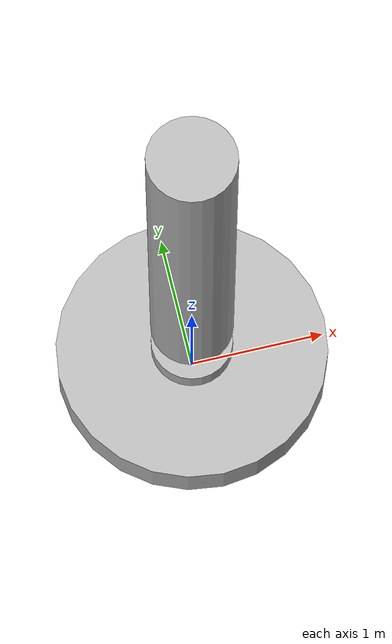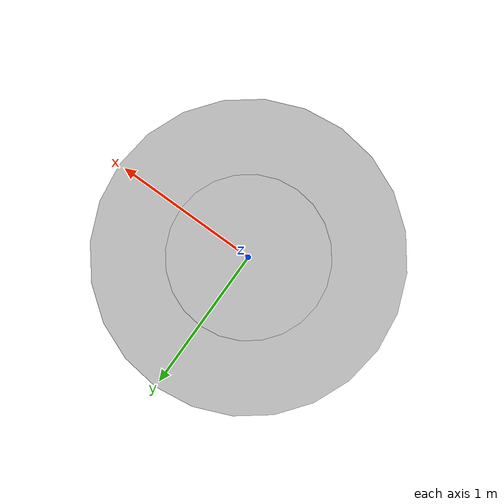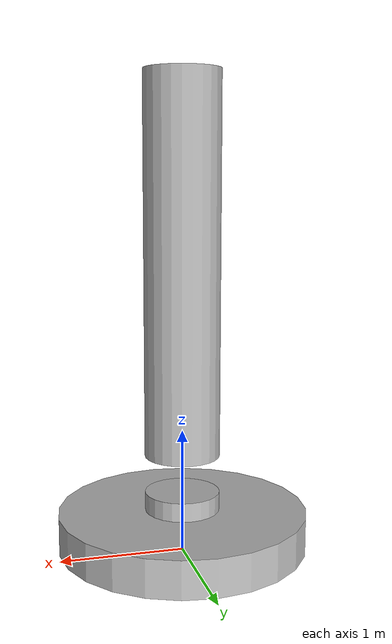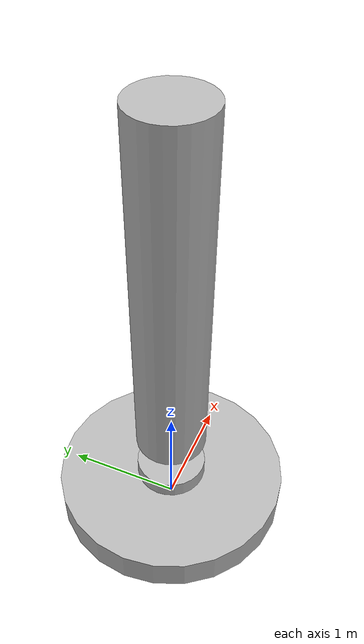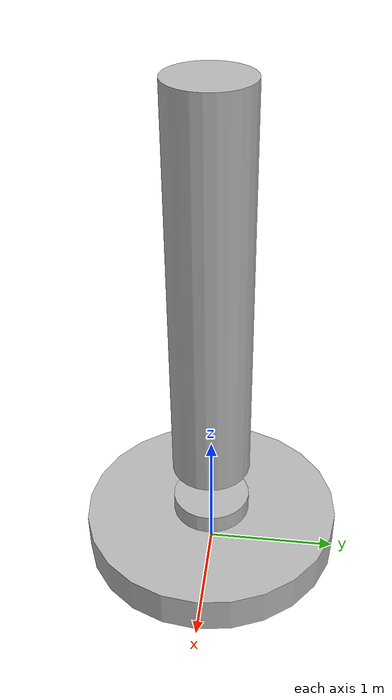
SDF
<?xml version='1.0'?>

<!--
    This is the 3 degree of freedom robotic arm.
-->

<sdf version="1.11">
    <model name="arm_3dof">
        <pose> 0.0 0.0 0.0 0.0 0.0 0.0 </pose>
        <static> false </static>
        <link name="base_link">
            <pose> 0.0 0.0 0.2 0.0 0.0 0.0 </pose>
            <visual name="visual">
                <geometry>
                    <cylinder>
                        <radius> 1.0 </radius>
                        <length> 0.3 </length>
                    </cylinder>
                </geometry>
            </visual>
        </link>
        <link name="shoulder_link">
            <pose> 0.0 0.0 0.4 0.0 0.0 0.0 </pose>
            <visual name="visual">
                <geometry>
                    <cylinder>
                        <radius> 0.3 </radius>
                        <length> 0.2 </length>
                    </cylinder>
                </geometry>
            </visual>
        </link>
        <link name="upper_arm_link">
            <pose> 0.0 0.0 2.3 0.0 0.0 0.0 </pose>
            <visual name="visual">
                <geometry>
                    <cylinder>
                        <radius> 0.3 </radius>
                        <length> 3.0 </length>
                    </cylinder>
                </geometry>
            </visual>
        </link>
        <joint name="shoulder_joint_yaw" type="revolute">
            <parent>base_link</parent>
            <child>shoulder_link</child>
            <pose> 0.0 0.0 -1.5 0.0 0.0 0.0 </pose>
            <axis>
                <xyz> 0.0 0.0 1.0 </xyz>
            </axis>
        </joint>
        <joint name="shoulder_joint_pitch" type="revolute">
            <parent>shoulder_link</parent>
            <child>upper_arm_link</child>
            <pose> 0.0 0.0 1.0 0.0 0.0 0.0 </pose>
            <axis>
                <xyz> 0.0 1.0 0.0 </xyz>
            </axis>
        </joint>
    </model>
</sdf>
